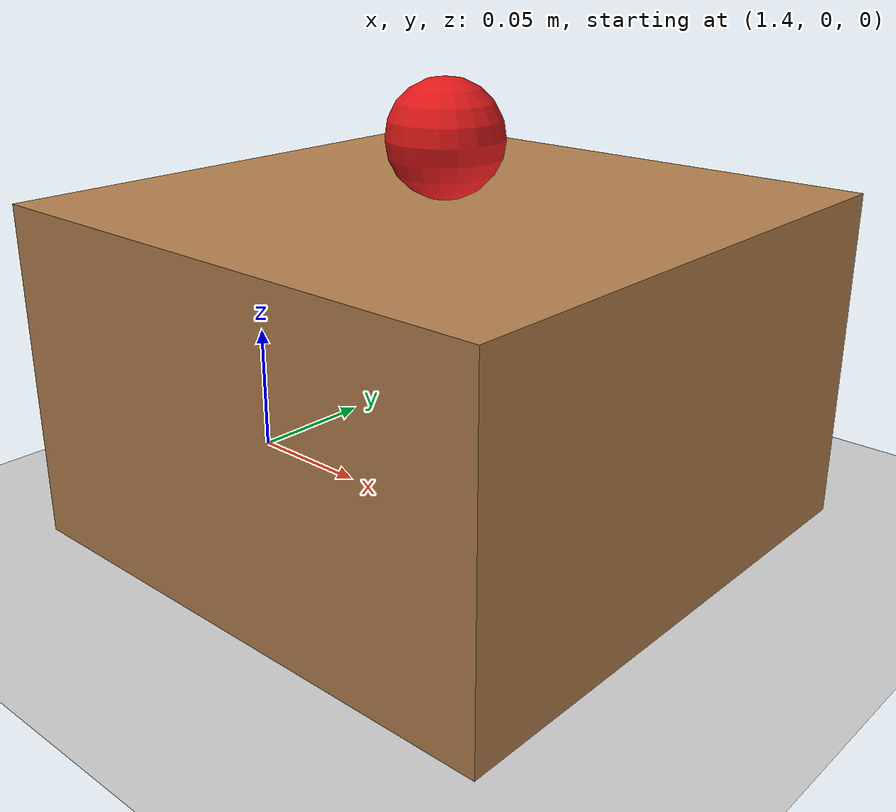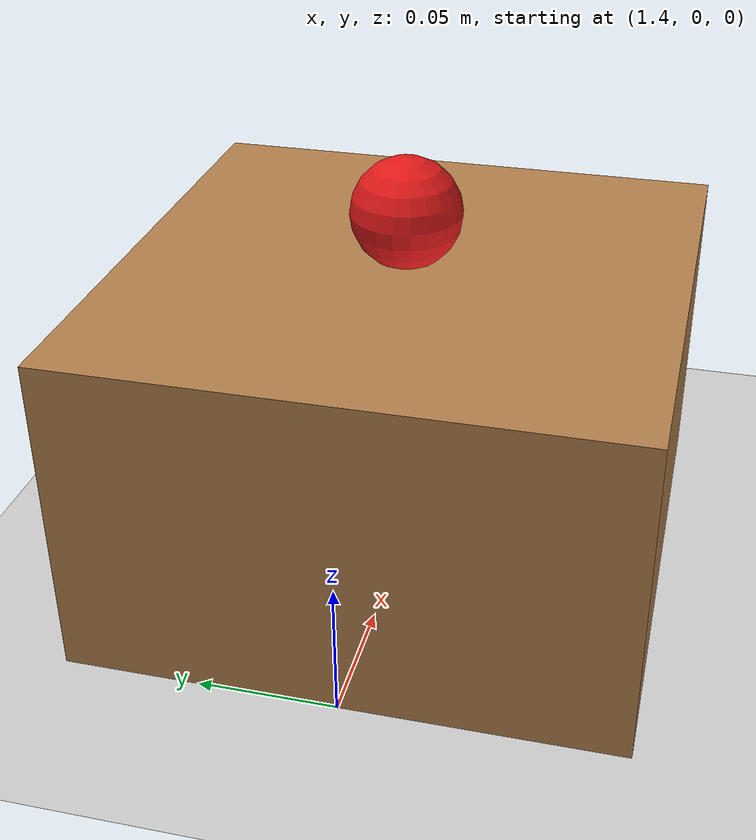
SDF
<?xml version="1.0" ?>
<sdf version="1.5">
  <world name="default">
    <include>
      <uri>model://ground_plane</uri>
    </include>
    <include>
      <uri>model://sun</uri>
    </include>
    <physics type="dart">
      <max_step_size>0.004</max_step_size>
      <real_time_update_rate>250</real_time_update_rate>
      <ode>
        <solver>
          <type>quick</type>
          <iters>50</iters>
          <sor>1.3</sor>
        </solver>
        <constraints>
          <cfm>0.0</cfm>
          <erp>0.2</erp>
          <contact_max_correcting_vel>100</contact_max_correcting_vel>
          <contact_surface_layer>0.001</contact_surface_layer>
        </constraints>
      </ode>
    </physics>
    <!-- Small table -->
    <include>
      <uri>model://small_table</uri>
      <pose>1.5 0 0.06 0 0 0</pose>
    </include>
    <!-- Strawberry on table -->
    <include>
      <uri>model://strawberry</uri>
      <pose>1.5 0 0.14 0 0 0</pose>
    </include>
  </world>
</sdf>

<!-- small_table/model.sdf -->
<sdf version="1.5">
  <model name="small_table">
    <static>true</static>
    <link name="link">
      <collision name="collision">
        <geometry>
          <box><size>0.2 0.2 0.12</size></box>
        </geometry>
      </collision>
      <visual name="visual">
        <geometry>
          <box><size>0.2 0.2 0.12</size></box>
        </geometry>
        <material>
          <ambient>0.6 0.4 0.2 1</ambient>
          <diffuse>0.7 0.5 0.3 1</diffuse>
        </material>
      </visual>
    </link>
  </model>
</sdf>

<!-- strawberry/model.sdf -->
<sdf version="1.5">
  <model name="strawberry">
    <static>false</static>
    <link name="link">
      <inertial>
        <mass>0.02</mass>
        <inertia>
          <ixx>1e-6</ixx><ixy>0</ixy><ixz>0</ixz>
          <iyy>1e-6</iyy><iyz>0</iyz>
          <izz>1e-6</izz>
        </inertia>
      </inertial>
      <collision name="collision">
        <geometry>
          <sphere><radius>0.02</radius></sphere>
        </geometry>
        <surface>
          <friction>
            <ode>
              <mu>5.0</mu>
              <mu2>5.0</mu2>
            </ode>
          </friction>
          <contact>
            <ode>
              <kp>1e5</kp>
              <kd>1e2</kd>
            </ode>
          </contact>
        </surface>
      </collision>
      <visual name="visual">
        <geometry>
          <sphere><radius>0.02</radius></sphere>
        </geometry>
        <material>
          <ambient>0.8 0.1 0.1 1</ambient>
          <diffuse>0.9 0.1 0.1 1</diffuse>
        </material>
      </visual>
      <velocity_decay>
        <linear>0.1</linear>
        <angular>0.5</angular>
      </velocity_decay>
    </link>
  </model>
</sdf>
